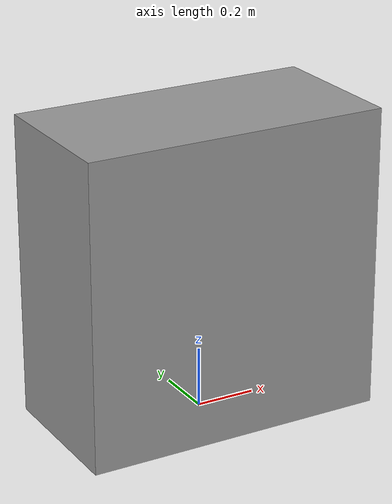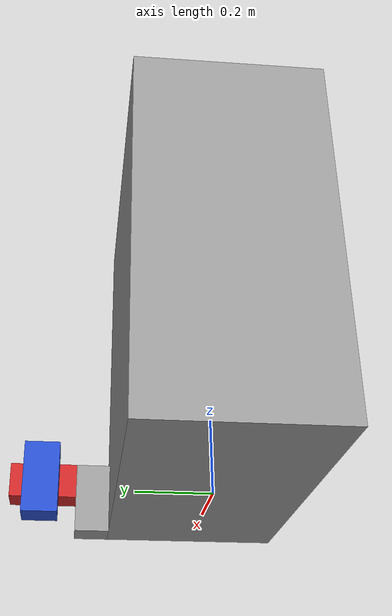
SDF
<?xml version='1.0'?>
<sdf version='1.6'>
  <model name='test_bench'>
    <link name='test_bench::base'>
      <pose frame=''>-0 -0 0.5 0 -0 0</pose>
      <inertial>
        <mass>1</mass>
        <pose frame=''>0 0 0 0 -0 0</pose>
        <inertia>
          <ixx>0.104166</ixx>
          <ixy>0</ixy>
          <ixz>0</ixz>
          <iyy>0.16666</iyy>
          <iyz>0</iyz>
          <izz>0.104166</izz>
        </inertia>
      </inertial>
      <self_collide>0</self_collide>
      <kinematic>0</kinematic>
      <visual name='visual'>
        <pose frame=''>0 0 0 0 -0 0</pose>
        <geometry>
          <box>
            <size>1 0.5 1</size>
          </box>
        </geometry>
        <material>
          <script>
            <uri>file://media/materials/scripts/gazebo.material</uri>
            <name>Gazebo/Gray</name>
          </script>
          <ambient>0.3 0.3 0.3 1</ambient>
          <diffuse>0.7 0.7 0.7 1</diffuse>
          <specular>0.01 0.01 0.01 1</specular>
          <emissive>0 0 0 1</emissive>
        </material>
        <cast_shadows>1</cast_shadows>
        <transparency>0</transparency>
      </visual>
      <collision name='collision'>
        <laser_retro>0</laser_retro>
        <max_contacts>10</max_contacts>
        <pose frame=''>0 0 0 0 -0 0</pose>
        <geometry>
          <box>
            <size>1 0.5 1</size>
          </box>
        </geometry>
        <surface>
          <friction>
            <ode>
              <mu>1</mu>
              <mu2>1</mu2>
              <fdir1>0 0 0</fdir1>
              <slip1>0</slip1>
              <slip2>0</slip2>
            </ode>
            <torsional>
              <coefficient>1</coefficient>
              <patch_radius>0</patch_radius>
              <surface_radius>0</surface_radius>
              <use_patch_radius>1</use_patch_radius>
              <ode>
                <slip>0</slip>
              </ode>
            </torsional>
          </friction>
          <bounce>
            <restitution_coefficient>0</restitution_coefficient>
            <threshold>1e+06</threshold>
          </bounce>
          <contact>
            <collide_without_contact>0</collide_without_contact>
            <collide_without_contact_bitmask>1</collide_without_contact_bitmask>
            <collide_bitmask>1</collide_bitmask>
            <ode>
              <soft_cfm>0</soft_cfm>
              <soft_erp>0.2</soft_erp>
              <kp>1e+13</kp>
              <kd>1</kd>
              <max_vel>0.01</max_vel>
              <min_depth>0</min_depth>
            </ode>
            <bullet>
              <split_impulse>1</split_impulse>
              <split_impulse_penetration_threshold>-0.01</split_impulse_penetration_threshold>
              <soft_cfm>0</soft_cfm>
              <soft_erp>0.2</soft_erp>
              <kp>1e+13</kp>
              <kd>1</kd>
            </bullet>
          </contact>
        </surface>
      </collision>
    </link>
    <link name='test_bench::pan_link'>
      <pose frame=''>0.25 0.45 0.1 0 -0 0.000444</pose>
      <inertial>
        <mass>0.1</mass>
        <pose frame=''>0 0 0 0 -0 0</pose>
        <inertia>
          <ixx>0.000416</ixx>
          <ixy>0</ixy>
          <ixz>0</ixz>
          <iyy>0.000416</iyy>
          <iyz>0</iyz>
          <izz>0.000166</izz>
        </inertia>
      </inertial>
      <self_collide>0</self_collide>
      <kinematic>0</kinematic>
      <gravity>1</gravity>
      <visual name='visual'>
        <pose frame=''>0 0 0 0 -0 0</pose>
        <geometry>
          <box>
            <size>0.1 0.1 0.2</size>
          </box>
        </geometry>
        <cast_shadows>1</cast_shadows>
        <material>
          <script>
            <uri>file://media/materials/scripts/gazebo.material</uri>
            <name>Gazebo/Blue</name>
          </script>
          <ambient>0 0 1 1</ambient>
          <diffuse>0 0 1 1</diffuse>
          <specular>0.1 0.1 0.1 1</specular>
          <emissive>0 0 0 1</emissive>
          <shader type='vertex'>
            <normal_map>__default__</normal_map>
          </shader>
        </material>
        <transparency>0</transparency>
      </visual>
      <collision name='collision'>
        <laser_retro>0</laser_retro>
        <max_contacts>10</max_contacts>
        <pose frame=''>0 0 0 0 -0 0</pose>
        <geometry>
          <box>
            <size>0.1 0.1 0.2</size>
          </box>
        </geometry>
        <surface>
          <friction>
            <ode>
              <mu>1</mu>
              <mu2>1</mu2>
              <fdir1>0 0 0</fdir1>
              <slip1>0</slip1>
              <slip2>0</slip2>
            </ode>
            <torsional>
              <coefficient>1</coefficient>
              <patch_radius>0</patch_radius>
              <surface_radius>0</surface_radius>
              <use_patch_radius>1</use_patch_radius>
              <ode>
                <slip>0</slip>
              </ode>
            </torsional>
          </friction>
          <bounce>
            <restitution_coefficient>0</restitution_coefficient>
            <threshold>1e+06</threshold>
          </bounce>
          <contact>
            <collide_without_contact>0</collide_without_contact>
            <collide_without_contact_bitmask>1</collide_without_contact_bitmask>
            <collide_bitmask>1</collide_bitmask>
            <ode>
              <soft_cfm>0</soft_cfm>
              <soft_erp>0.2</soft_erp>
              <kp>1e+13</kp>
              <kd>1</kd>
              <max_vel>0.01</max_vel>
              <min_depth>0</min_depth>
            </ode>
            <bullet>
              <split_impulse>1</split_impulse>
              <split_impulse_penetration_threshold>-0.01</split_impulse_penetration_threshold>
              <soft_cfm>0</soft_cfm>
              <soft_erp>0.2</soft_erp>
              <kp>1e+13</kp>
              <kd>1</kd>
            </bullet>
          </contact>
        </surface>
      </collision>
    </link>
    <link name='test_bench::pan_tilt_base'>
      <pose frame=''>0.45 0.3 0.1 0 -0 0</pose>
      <inertial>
        <mass>0.1</mass>
        <pose frame=''>0 0 0 0 -0 0</pose>
        <inertia>
          <ixx>0.000416</ixx>
          <ixy>0</ixy>
          <ixz>0</ixz>
          <iyy>0.000416</iyy>
          <iyz>0</iyz>
          <izz>0.000166</izz>
        </inertia>
      </inertial>
      <self_collide>0</self_collide>
      <kinematic>0</kinematic>
      <visual name='visual'>
        <pose frame=''>0 0 0 0 -0 0</pose>
        <geometry>
          <box>
            <size>0.1 0.1 0.2</size>
          </box>
        </geometry>
        <material>
          <script>
            <uri>file://media/materials/scripts/gazebo.material</uri>
            <name>Gazebo/Gray</name>
          </script>
          <ambient>0.3 0.3 0.3 1</ambient>
          <diffuse>0.7 0.7 0.7 1</diffuse>
          <specular>0.01 0.01 0.01 1</specular>
          <emissive>0 0 0 1</emissive>
        </material>
        <cast_shadows>1</cast_shadows>
        <transparency>0</transparency>
      </visual>
      <collision name='collision'>
        <laser_retro>0</laser_retro>
        <max_contacts>10</max_contacts>
        <pose frame=''>0 0 0 0 -0 0</pose>
        <geometry>
          <box>
            <size>0.1 0.1 0.2</size>
          </box>
        </geometry>
        <surface>
          <friction>
            <ode>
              <mu>1</mu>
              <mu2>1</mu2>
              <fdir1>0 0 0</fdir1>
              <slip1>0</slip1>
              <slip2>0</slip2>
            </ode>
            <torsional>
              <coefficient>1</coefficient>
              <patch_radius>0</patch_radius>
              <surface_radius>0</surface_radius>
              <use_patch_radius>1</use_patch_radius>
              <ode>
                <slip>0</slip>
              </ode>
            </torsional>
          </friction>
          <bounce>
            <restitution_coefficient>0</restitution_coefficient>
            <threshold>1e+06</threshold>
          </bounce>
          <contact>
            <collide_without_contact>0</collide_without_contact>
            <collide_without_contact_bitmask>1</collide_without_contact_bitmask>
            <collide_bitmask>1</collide_bitmask>
            <ode>
              <soft_cfm>0</soft_cfm>
              <soft_erp>0.2</soft_erp>
              <kp>1e+13</kp>
              <kd>1</kd>
              <max_vel>0.01</max_vel>
              <min_depth>0</min_depth>
            </ode>
            <bullet>
              <split_impulse>1</split_impulse>
              <split_impulse_penetration_threshold>-0.01</split_impulse_penetration_threshold>
              <soft_cfm>0</soft_cfm>
              <soft_erp>0.2</soft_erp>
              <kp>1e+13</kp>
              <kd>1</kd>
            </bullet>
          </contact>
        </surface>
      </collision>
    </link>
    <link name='test_bench::tilt_link'>
      <pose frame=''>0.45 0.45 0.15 0 -0 0</pose>
      <inertial>
        <mass>0.1</mass>
        <pose frame=''>0 0 0 0 -0 0</pose>
        <inertia>
          <ixx>0.000416</ixx>
          <ixy>0</ixy>
          <ixz>0</ixz>
          <iyy>0.000166</iyy>
          <iyz>0</iyz>
          <izz>0.000416</izz>
        </inertia>
      </inertial>
      <self_collide>0</self_collide>
      <kinematic>0</kinematic>
      <visual name='visual'>
        <pose frame=''>0 0 0 0 -0 0</pose>
        <geometry>
          <box>
            <size>0.1 0.2 0.1</size>
          </box>
        </geometry>
        <cast_shadows>1</cast_shadows>
        <material>
          <script>
            <uri>file://media/materials/scripts/gazebo.material</uri>
            <name>Gazebo/Red</name>
          </script>
          <ambient>1 0 0 1</ambient>
          <diffuse>1 0 0 1</diffuse>
          <specular>0.1 0.1 0.1 1</specular>
          <emissive>0 0 0 1</emissive>
        </material>
        <transparency>0</transparency>
      </visual>
      <collision name='collision'>
        <laser_retro>0</laser_retro>
        <max_contacts>10</max_contacts>
        <pose frame=''>0 0 0 0 -0 0</pose>
        <geometry>
          <box>
            <size>0.1 0.2 0.1</size>
          </box>
        </geometry>
        <surface>
          <friction>
            <ode>
              <mu>1</mu>
              <mu2>1</mu2>
              <fdir1>0 0 0</fdir1>
              <slip1>0</slip1>
              <slip2>0</slip2>
            </ode>
            <torsional>
              <coefficient>1</coefficient>
              <patch_radius>0</patch_radius>
              <surface_radius>0</surface_radius>
              <use_patch_radius>1</use_patch_radius>
              <ode>
                <slip>0</slip>
              </ode>
            </torsional>
          </friction>
          <bounce>
            <restitution_coefficient>0</restitution_coefficient>
            <threshold>1e+06</threshold>
          </bounce>
          <contact>
            <collide_without_contact>0</collide_without_contact>
            <collide_without_contact_bitmask>1</collide_without_contact_bitmask>
            <collide_bitmask>1</collide_bitmask>
            <ode>
              <soft_cfm>0</soft_cfm>
              <soft_erp>0.2</soft_erp>
              <kp>1e+13</kp>
              <kd>1</kd>
              <max_vel>0.01</max_vel>
              <min_depth>0</min_depth>
            </ode>
            <bullet>
              <split_impulse>1</split_impulse>
              <split_impulse_penetration_threshold>-0.01</split_impulse_penetration_threshold>
              <soft_cfm>0</soft_cfm>
              <soft_erp>0.2</soft_erp>
              <kp>1e+13</kp>
              <kd>1</kd>
            </bullet>
          </contact>
        </surface>
      </collision>
    </link>
    <joint name='test_bench::pan_joint' type='revolute'>
      <parent>test_bench::base</parent>
      <child>test_bench::pan_link</child>
      <pose frame=''>0 0 0 0 -0 0</pose>
      <axis>
        <xyz>0 0 1</xyz>
        <use_parent_model_frame>0</use_parent_model_frame>
        <limit>
          <lower>0</lower>
          <upper>3.14159</upper>
          <effort>-1</effort>
          <velocity>0.1</velocity>
        </limit>
        <dynamics>
          <spring_reference>0</spring_reference>
          <spring_stiffness>0</spring_stiffness>
          <damping>0.05</damping>
          <friction>0</friction>
        </dynamics>
      </axis>
      <physics>
        <ode>
          <limit>
            <cfm>0</cfm>
            <erp>0.2</erp>
          </limit>
          <suspension>
            <cfm>0</cfm>
            <erp>0.2</erp>
          </suspension>
        </ode>
      </physics>
    </joint>
    <joint name='test_bench::pan_tilt_base_joint' type='fixed'>
      <parent>test_bench::base</parent>
      <child>test_bench::pan_tilt_base</child>
      <pose frame=''>0 0 0 0 -0 0</pose>
      <physics>
        <ode>
          <limit>
            <cfm>0</cfm>
            <erp>0.2</erp>
          </limit>
          <suspension>
            <cfm>0</cfm>
            <erp>0.2</erp>
          </suspension>
        </ode>
      </physics>
    </joint>
    <joint name='test_bench::tilt_joint' type='revolute'>
      <parent>test_bench::tilt_link</parent>
      <child>test_bench::pan_tilt_base</child>
      <pose frame=''>0 0 0.05 0 -0 0</pose>
      <axis>
        <xyz>0 1 0</xyz>
        <use_parent_model_frame>0</use_parent_model_frame>
        <limit>
          <lower>-1.5708</lower>
          <upper>1.5708</upper>
          <effort>-1</effort>
          <velocity>0.05</velocity>
        </limit>
        <dynamics>
          <spring_reference>0</spring_reference>
          <spring_stiffness>0</spring_stiffness>
          <damping>0.1</damping>
          <friction>0</friction>
        </dynamics>
      </axis>
      <physics>
        <ode>
          <limit>
            <cfm>0</cfm>
            <erp>0.2</erp>
          </limit>
          <suspension>
            <cfm>0</cfm>
            <erp>0.2</erp>
          </suspension>
        </ode>
      </physics>
    </joint>
    <static>0</static>
    <allow_auto_disable>1</allow_auto_disable>
    <plugin name='base_gyro' filename='libgyro.so'>
      <link>test_bench::pan_link</link>
      <topic>/gazebo/frc/simulator/analog/0</topic>
      <axis>yaw</axis>
      <units>degrees</units>
    </plugin>
    <plugin name='clock' filename='libclock.so'>
      <topic>/gazebo/frc/time</topic>
    </plugin>
    <plugin name='pan_servo' filename='libservo.so'>
      <joint>test_bench::pan_joint</joint>
      <topic>/gazebo/frc/simulator/pwm/8</topic>
      <torque>10</torque>
    </plugin>
    <plugin name='tilt_servo' filename='libservo.so'>
      <joint>test_bench::tilt_joint</joint>
      <topic>/gazebo/frc/simulator/pwm/9</topic>
      <torque>10</torque>
      <zero_position>-1.570796</zero_position>
    </plugin>
  </model>
</sdf>
